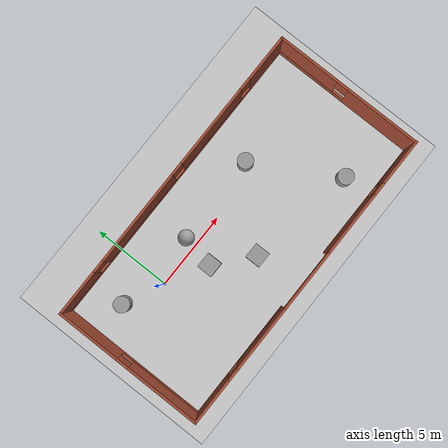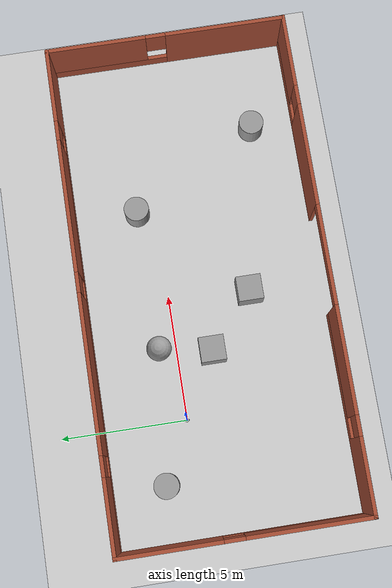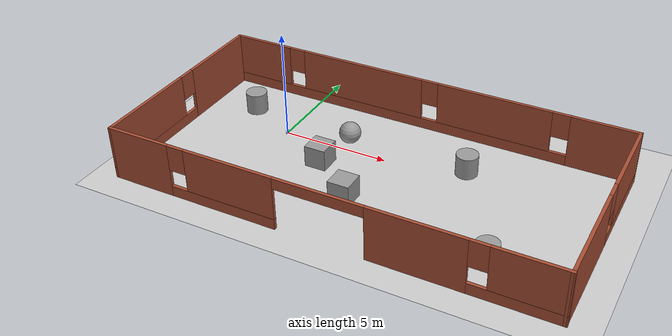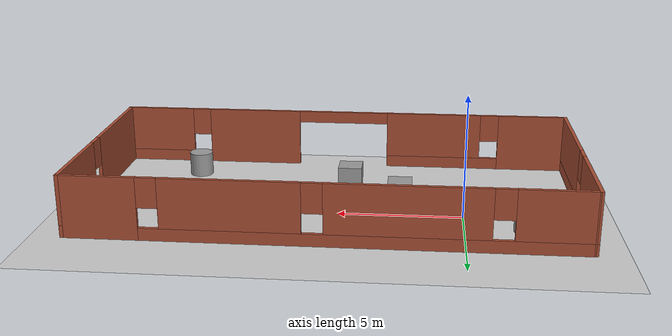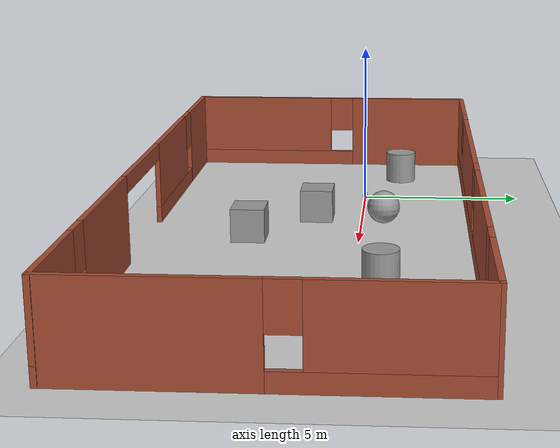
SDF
<sdf version="1.7">
 <world name="default">
  <light name="sun" type="directional">
   <pose>0 0 10 0 -0 0</pose>
   <diffuse>0.8 0.8 0.8 1</diffuse>
   <specular>0.2 0.2 0.2 1</specular>
   <attenuation>
    <range>1000</range>
    <constant>0.9</constant>
    <linear>0.01</linear>
    <quadratic>0.001</quadratic>
   </attenuation>
   <direction>-0.5 0.1 -0.9</direction>
   <spot><inner_angle>0</inner_angle><outer_angle>0</outer_angle><falloff>0</falloff></spot>
  </light>
  <model name="ground_plane">
   <static>1</static>
   <link name="link">
    <collision name="collision">
     <geometry><plane><normal>0 0 1</normal><size>100 100</size></plane></geometry>
     <surface><friction><ode><mu>100</mu><mu2>50</mu2></ode></friction></surface>
    </collision>
    <visual name="visual">
     <cast_shadows>0</cast_shadows>
     <geometry><plane><normal>0 0 1</normal><size>100 100</size></plane></geometry>
     <material>
      <script><uri>file://media/materials/scripts/gazebo.material</uri><name>Gazebo/Grey</name></script>
     </material>
    </visual>
   </link>
  </model>
  <gravity>0 0 -9.8</gravity>
  <magnetic_field>6e-06 2.3e-05 -4.2e-05</magnetic_field>
  <atmosphere type="adiabatic"/>
  <physics type="ode">
   <max_step_size>0.001</max_step_size>
   <real_time_factor>1</real_time_factor>
   <real_time_update_rate>1000</real_time_update_rate>
  </physics>
  <scene><ambient>0.4 0.4 0.4 1</ambient><background>0.7 0.7 0.7 1</background><shadows>1</shadows></scene>
  <audio><device>default</device></audio>
  <spherical_coordinates>
   <surface_model>EARTH_WGS84</surface_model>
   <latitude_deg>0</latitude_deg>
   <longitude_deg>0</longitude_deg>
   <elevation>0</elevation>
   <heading_deg>0</heading_deg>
  </spherical_coordinates>
  <model name="my_robot">
   <link name="base_footprint">
    <inertial>
     <pose>0 0 0.074736 0 -0 0</pose>
     <mass>1500.15</mass>
     <inertia>
      <ixx>7.41805</ixx>
      <ixy>0</ixy>
      <ixz>-1.38778e-17</ixz>
      <iyy>8.59417</iyy>
      <iyz>0</iyz>
      <izz>4.48189</izz>
     </inertia>
    </inertial>
    <collision name="base_footprint_fixed_joint_lump__base_link_collision">
     <pose>0 0 0.10525 0 -0 0</pose>
     <geometry><cylinder><length>0.1855</length><radius>0.07</radius></cylinder></geometry>
    </collision>
    <collision name="base_footprint_fixed_joint_lump__camera_collision_1">
     <pose>0.075 0 0.164 3.14159 1.57079 3.14159</pose>
     <geometry><box><size>0.025 0.025 0.01</size></box></geometry>
    </collision>
    <collision name="base_footprint_fixed_joint_lump__front_caster_wheel_link_collision_2">
     <pose>0.0485 0 0.01267 0 -0 0</pose>
     <geometry><sphere><radius>0.0125</radius></sphere></geometry>
    </collision>
    <collision name="base_footprint_fixed_joint_lump__bno055_collision_3">
     <pose>0 0 0.1885 0 -0 1.5708</pose>
     <geometry><box><size>0.02 0.025 0.0045</size></box></geometry>
    </collision>
    <collision name="base_footprint_fixed_joint_lump__laser_collision_4">
     <pose>0 0 0.21615 0 -0 0</pose>
     <geometry><cylinder><length>0.0413</length><radius>0.0348</radius></cylinder></geometry>
    </collision>
    <collision name="base_footprint_fixed_joint_lump__rear_caster_wheel_link_collision_5">
     <pose>-0.0485 0 0.01267 0 -0 0</pose>
     <geometry><sphere><radius>0.0125</radius></sphere></geometry>
    </collision>
    <visual name="base_footprint_fixed_joint_lump__base_link_visual">
     <pose>0 0 0.15 1.5708 -0 1.5708</pose>
     <geometry><mesh><scale>0.001 0.001 0.001</scale><uri>model://meshes/my_robot_base.stl</uri></mesh></geometry>
     <material>
      <ambient>0.6 0.7 0.6 1</ambient>
      <diffuse>0.6 0.7 0.6 1</diffuse>
      <specular>0.2 0.3 0.3 1</specular>
      <emissive>0 0 0 1</emissive>
     </material>
    </visual>
    <visual name="base_footprint_fixed_joint_lump__camera_visual_1">
     <pose>0.075 0 0.164 3.14159 1.57079 3.14159</pose>
     <geometry><box><size>0.025 0.025 0.01</size></box></geometry>
     <material>
      <script><name>Gazebo/Red</name><uri>file://media/materials/scripts/gazebo.material</uri></script>
     </material>
    </visual>
    <visual name="base_footprint_fixed_joint_lump__front_caster_wheel_link_visual_2">
     <pose>0.0485 0.0065 0.01267 0 0 -1.5708</pose>
     <geometry><mesh><scale>0.001 0.001 0.001</scale><uri>model://meshes/caster_wheel.stl</uri></mesh></geometry>
     <material>
      <script><name>Gazebo/FlatBlack</name><uri>file://media/materials/scripts/gazebo.material</uri></script>
     </material>
    </visual>
    <visual name="base_footprint_fixed_joint_lump__bno055_visual_3">
     <pose>0 0 0.18625 0 -0 0</pose>
     <geometry>
      <mesh><scale>0.001 0.001 0.001</scale><uri>model://meshes/adafruit_bno055_stemma_qt_1.stl</uri></mesh>
     </geometry>
     <material>
      <ambient>0.8 0.1 0.1 1</ambient>
      <diffuse>0.8 0.1 0.1 1</diffuse>
      <specular>0.3 0.1 0.1 1</specular>
      <emissive>0.1 0 0 1</emissive>
     </material>
    </visual>
    <visual name="base_footprint_fixed_joint_lump__laser_visual_4">
     <pose>0 0 0.1955 0 -0 0</pose>
     <geometry>
      <mesh><scale>0.001 0.001 0.001</scale><uri>model://meshes/c1m1_appearance_v2_20230926_3d_.stl</uri></mesh>
     </geometry>
     <material>
      <ambient>1 1 0.6 1</ambient>
      <diffuse>1 1 0.6 1</diffuse>
      <specular>0.2 0.2 0.1 1</specular>
      <emissive>0.1 0.1 0 1</emissive>
     </material>
    </visual>
    <visual name="base_footprint_fixed_joint_lump__rear_caster_wheel_link_visual_5">
     <pose>-0.0485 0.0065 0.01267 0 0 -1.5708</pose>
     <geometry><mesh><scale>0.001 0.001 0.001</scale><uri>model://meshes/caster_wheel.stl</uri></mesh></geometry>
     <material>
      <script><name>Gazebo/FlatBlack</name><uri>file://media/materials/scripts/gazebo.material</uri></script>
     </material>
    </visual>
    <sensor name="camera" type="camera">
     <visualize>1</visualize>
     <update_rate>30</update_rate>
     <camera>
      <horizontal_fov>1.0856</horizontal_fov>
      <image><width>640</width><height>480</height><format>R8G8B8</format></image>
      <clip><near>0.05</near><far>3</far></clip>
     </camera>
     <plugin name="camera_controller" filename="libgazebo_ros_camera.so">
      <alwaysOn>1</alwaysOn>
      <imageTopicName>image_raw/compressed</imageTopicName>
      <frame_name>camera_optical</frame_name>
      <hackBaseline>0.07</hackBaseline>
      <distortionK1>0.0</distortionK1>
      <distortionK2>0.0</distortionK2>
      <distortionK3>0.0</distortionK3>
      <distortionT1>0.0</distortionT1>
      <distortionT2>0.0</distortionT2>
     </plugin>
     <pose>0.075 0 0.159 0 -0 0</pose>
    </sensor>
    <m1 value="10.0"/>
    <m2 value="10.0"/>
    <m1 value="10.0"/>
    <m2 value="10.0"/>
   </link>
   <joint name="base_left_wheel_joint" type="revolute">
    <pose relative_to="base_footprint">0 0.0775 0.033 1.5708 -0 0</pose>
    <parent>base_footprint</parent>
    <child>left_wheel_link</child>
    <axis>
     <xyz>0 0 -1</xyz>
     <limit><lower>-1e+16</lower><upper>1e+16</upper></limit>
     <dynamics><spring_reference>0</spring_reference><spring_stiffness>0</spring_stiffness></dynamics>
    </axis>
   </joint>
   <link name="left_wheel_link">
    <pose relative_to="base_left_wheel_joint">0 0 0 0 -0 0</pose>
    <inertial>
     <mass>500</mass>
     <inertia>
      <ixx>0.162167</ixx>
      <ixy>0</ixy>
      <ixz>0</ixz>
      <iyy>0.000162167</iyy>
      <iyz>0</iyz>
      <izz>0.27225</izz>
     </inertia>
    </inertial>
    <collision name="left_wheel_link_collision">
     <geometry><sphere><radius>0.033</radius></sphere></geometry>
    </collision>
    <visual name="left_wheel_link_visual">
     <pose>0 0 -0.0125 1.5708 -0 0</pose>
     <geometry><mesh><scale>0.001 0.001 0.001</scale><uri>model://meshes/wheel.stl</uri></mesh></geometry>
     <material>
      <ambient>0.4 0.5 0.6 1</ambient>
      <diffuse>0.4 0.5 0.6 1</diffuse>
      <specular>0.2 0.3 0.4 1</specular>
      <emissive>0 0 0 1</emissive>
     </material>
    </visual>
    <m1 value="10.0"/>
    <m2 value="10.0"/>
   </link>
   <joint name="base_right_wheel_joint" type="revolute">
    <pose relative_to="base_footprint">0 -0.0775 0.033 -1.5708 0 0</pose>
    <parent>base_footprint</parent>
    <child>right_wheel_link</child>
    <axis>
     <xyz>0 0 1</xyz>
     <limit><lower>-1e+16</lower><upper>1e+16</upper></limit>
     <dynamics><spring_reference>0</spring_reference><spring_stiffness>0</spring_stiffness></dynamics>
    </axis>
   </joint>
   <link name="right_wheel_link">
    <pose relative_to="base_right_wheel_joint">0 0 0 0 -0 0</pose>
    <inertial>
     <mass>500</mass>
     <inertia>
      <ixx>0.162167</ixx>
      <ixy>0</ixy>
      <ixz>0</ixz>
      <iyy>0.162167</iyy>
      <iyz>0</iyz>
      <izz>0.27225</izz>
     </inertia>
    </inertial>
    <collision name="right_wheel_link_collision">
     <geometry><sphere><radius>0.033</radius></sphere></geometry>
    </collision>
    <visual name="right_wheel_link_visual">
     <pose>0 0 -0.0125 1.5708 -0 0</pose>
     <geometry><mesh><scale>0.001 0.001 0.001</scale><uri>model://meshes/wheel.stl</uri></mesh></geometry>
     <material>
      <ambient>0.4 0.5 0.6 1</ambient>
      <diffuse>0.4 0.5 0.6 1</diffuse>
      <specular>0.2 0.3 0.4 1</specular>
      <emissive>0 0 0 1</emissive>
     </material>
    </visual>
    <m1 value="10.0"/>
    <m2 value="10.0"/>
   </link>
   <plugin name="diff_drive_controller" filename="libgazebo_ros_diff_drive.so">
    <ros>
     <namespace>/my_robot</namespace>
     <remapping>cmd_vel:=/cmd_vel_out</remapping>
     <remapping>odom:=/odom</remapping>
    </ros>
    <robotNamespace>/my_robot</robotNamespace>
    <left_joint>base_left_wheel_joint</left_joint>
    <right_joint>base_right_wheel_joint</right_joint>
    <wheel_separation>0.155</wheel_separation>
    <wheel_diameter>0.066</wheel_diameter>
    <update_rate>100.0</update_rate>
    <max_velocity>1.0</max_velocity>
   </plugin>
   <pose>0.001137 3.3e-05 0 -0 0.003506 -0.002123</pose>
  </model>
  <model name="gazebo_world">
   <pose>5.27296 -1.46749 0 0 -0 0</pose>
   <link name="Wall_10">
    <pose>0.011301 -4.8006 0 0 -0 0</pose>
    <visual name="Wall_10_Visual_0">
     <pose>-8.49864 0 1.25 0 -0 0</pose>
     <geometry><box><size>3.00273 0.15 2.5</size></box></geometry>
     <material>
      <script><uri>file://media/materials/scripts/gazebo.material</uri><name>Gazebo/Bricks</name></script>
      <ambient>1 0.764706 0.305882 1</ambient>
     </material>
     <meta><layer>0</layer></meta>
    </visual>
    <collision name="Wall_10_Collision_0">
     <geometry><box><size>3.00273 0.15 2.5</size></box></geometry>
     <pose>-8.49864 0 1.25 0 -0 0</pose>
    </collision>
    <visual name="Wall_10_Visual_1">
     <pose>4.07939 0 1.25 0 -0 0</pose>
     <geometry><box><size>4.15782 0.15 2.5</size></box></geometry>
     <material>
      <script><uri>file://media/materials/scripts/gazebo.material</uri><name>Gazebo/Bricks</name></script>
      <ambient>1 0.764706 0.305882 1</ambient>
     </material>
     <meta><layer>0</layer></meta>
    </visual>
    <collision name="Wall_10_Collision_1">
     <geometry><box><size>4.15782 0.15 2.5</size></box></geometry>
     <pose>4.07939 0 1.25 0 -0 0</pose>
    </collision>
    <visual name="Wall_10_Visual_2">
     <pose>-4.4984 0 0.25 0 -0 0</pose>
     <geometry><box><size>4.99775 0.15 0.5</size></box></geometry>
     <material>
      <script><uri>file://media/materials/scripts/gazebo.material</uri><name>Gazebo/Bricks</name></script>
      <ambient>1 0.764706 0.305882 1</ambient>
     </material>
     <meta><layer>0</layer></meta>
    </visual>
    <collision name="Wall_10_Collision_2">
     <geometry><box><size>4.99775 0.15 0.5</size></box></geometry>
     <pose>-4.4984 0 0.25 0 -0 0</pose>
    </collision>
    <visual name="Wall_10_Visual_3">
     <pose>8.07915 0 0.25 0 -0 0</pose>
     <geometry><box><size>3.8417 0.15 0.5</size></box></geometry>
     <material>
      <script><uri>file://media/materials/scripts/gazebo.material</uri><name>Gazebo/Bricks</name></script>
      <ambient>1 0.764706 0.305882 1</ambient>
     </material>
     <meta><layer>0</layer></meta>
    </visual>
    <collision name="Wall_10_Collision_3">
     <geometry><box><size>3.8417 0.15 0.5</size></box></geometry>
     <pose>8.07915 0 0.25 0 -0 0</pose>
    </collision>
    <visual name="Wall_10_Visual_4">
     <pose>-4.0984 0 1.5 0 -0 0</pose>
     <geometry><box><size>4.19775 0.15 2</size></box></geometry>
     <material>
      <script><uri>file://media/materials/scripts/gazebo.material</uri><name>Gazebo/Bricks</name></script>
      <ambient>1 0.764706 0.305882 1</ambient>
     </material>
     <meta><layer>0</layer></meta>
    </visual>
    <collision name="Wall_10_Collision_4">
     <geometry><box><size>4.19775 0.15 2</size></box></geometry>
     <pose>-4.0984 0 1.5 0 -0 0</pose>
    </collision>
    <visual name="Wall_10_Visual_5">
     <pose>-4.0984 0 1.5 0 -0 0</pose>
     <geometry><box><size>4.19775 0.15 2</size></box></geometry>
     <material>
      <script><uri>file://media/materials/scripts/gazebo.material</uri><name>Gazebo/Bricks</name></script>
      <ambient>1 0.764706 0.305882 1</ambient>
     </material>
     <meta><layer>0</layer></meta>
    </visual>
    <collision name="Wall_10_Collision_5">
     <geometry><box><size>4.19775 0.15 2</size></box></geometry>
     <pose>-4.0984 0 1.5 0 -0 0</pose>
    </collision>
    <visual name="Wall_10_Visual_6">
     <pose>8.47915 0 1.5 0 -0 0</pose>
     <geometry><box><size>3.0417 0.15 2</size></box></geometry>
     <material>
      <script><uri>file://media/materials/scripts/gazebo.material</uri><name>Gazebo/Bricks</name></script>
      <ambient>1 0.764706 0.305882 1</ambient>
     </material>
     <meta><layer>0</layer></meta>
    </visual>
    <collision name="Wall_10_Collision_6">
     <geometry><box><size>3.0417 0.15 2</size></box></geometry>
     <pose>8.47915 0 1.5 0 -0 0</pose>
    </collision>
    <visual name="Wall_10_Visual_7">
     <pose>-6.59727 0 1.9 0 -0 0</pose>
     <geometry><box><size>0.8 0.15 1.2</size></box></geometry>
     <material>
      <script><uri>file://media/materials/scripts/gazebo.material</uri><name>Gazebo/Bricks</name></script>
      <ambient>1 0.764706 0.305882 1</ambient>
     </material>
     <meta><layer>0</layer></meta>
    </visual>
    <collision name="Wall_10_Collision_7">
     <geometry><box><size>0.8 0.15 1.2</size></box></geometry>
     <pose>-6.59727 0 1.9 0 -0 0</pose>
    </collision>
    <visual name="Wall_10_Visual_8">
     <pose>6.5583 0 1.9 0 -0 0</pose>
     <geometry><box><size>0.8 0.15 1.2</size></box></geometry>
     <material>
      <script><uri>file://media/materials/scripts/gazebo.material</uri><name>Gazebo/Bricks</name></script>
      <ambient>1 0.764706 0.305882 1</ambient>
     </material>
     <meta><layer>0</layer></meta>
    </visual>
    <collision name="Wall_10_Collision_8">
     <geometry><box><size>0.8 0.15 1.2</size></box></geometry>
     <pose>6.5583 0 1.9 0 -0 0</pose>
    </collision>
    <visual name="Wall_10_Visual_9">
     <pose>0.000477 0 2.25 0 -0 0</pose>
     <geometry><box><size>4 0.15 0.5</size></box></geometry>
     <material>
      <script><uri>file://media/materials/scripts/gazebo.material</uri><name>Gazebo/Bricks</name></script>
      <ambient>1 0.764706 0.305882 1</ambient>
     </material>
     <meta><layer>0</layer></meta>
    </visual>
    <collision name="Wall_10_Collision_9">
     <geometry><box><size>4 0.15 0.5</size></box></geometry>
     <pose>0.000477 0 2.25 0 -0 0</pose>
    </collision>
    <visual name="Wall_10_Visual_10">
     <pose>0.000477 0 2.25 0 -0 0</pose>
     <geometry><box><size>4 0.15 0.5</size></box></geometry>
     <material>
      <script><uri>file://media/materials/scripts/gazebo.material</uri><name>Gazebo/Bricks</name></script>
      <ambient>1 0.764706 0.305882 1</ambient>
     </material>
     <meta><layer>0</layer></meta>
    </visual>
    <collision name="Wall_10_Collision_10">
     <geometry><box><size>4 0.15 0.5</size></box></geometry>
     <pose>0.000477 0 2.25 0 -0 0</pose>
    </collision>
   </link>
   <link name="Wall_11">
    <pose>9.91628 0 0 0 -0 1.57133</pose>
    <visual name="Wall_11_Visual_0">
     <pose>-2.43389 0 1.25 0 -0 0</pose>
     <geometry><box><size>4.88346 0.15 2.5</size></box></geometry>
     <material>
      <script><uri>file://media/materials/scripts/gazebo.material</uri><name>Gazebo/Bricks</name></script>
      <ambient>1 0.764706 0.305882 1</ambient>
     </material>
     <meta><layer>0</layer></meta>
    </visual>
    <collision name="Wall_11_Collision_0">
     <geometry><box><size>4.88346 0.15 2.5</size></box></geometry>
     <pose>-2.43389 0 1.25 0 -0 0</pose>
    </collision>
    <visual name="Wall_11_Visual_1">
     <pose>2.44173 0 0.25 0 -0 0</pose>
     <geometry><box><size>4.86777 0.15 0.5</size></box></geometry>
     <material>
      <script><uri>file://media/materials/scripts/gazebo.material</uri><name>Gazebo/Bricks</name></script>
      <ambient>1 0.764706 0.305882 1</ambient>
     </material>
     <meta><layer>0</layer></meta>
    </visual>
    <collision name="Wall_11_Collision_1">
     <geometry><box><size>4.86777 0.15 0.5</size></box></geometry>
     <pose>2.44173 0 0.25 0 -0 0</pose>
    </collision>
    <visual name="Wall_11_Visual_2">
     <pose>2.84173 0 1.5 0 -0 0</pose>
     <geometry><box><size>4.06777 0.15 2</size></box></geometry>
     <material>
      <script><uri>file://media/materials/scripts/gazebo.material</uri><name>Gazebo/Bricks</name></script>
      <ambient>1 0.764706 0.305882 1</ambient>
     </material>
     <meta><layer>0</layer></meta>
    </visual>
    <collision name="Wall_11_Collision_2">
     <geometry><box><size>4.06777 0.15 2</size></box></geometry>
     <pose>2.84173 0 1.5 0 -0 0</pose>
    </collision>
    <visual name="Wall_11_Visual_3">
     <pose>0.407842 0 1.9 0 -0 0</pose>
     <geometry><box><size>0.8 0.15 1.2</size></box></geometry>
     <material>
      <script><uri>file://media/materials/scripts/gazebo.material</uri><name>Gazebo/Bricks</name></script>
      <ambient>1 0.764706 0.305882 1</ambient>
     </material>
     <meta><layer>0</layer></meta>
    </visual>
    <collision name="Wall_11_Collision_3">
     <geometry><box><size>0.8 0.15 1.2</size></box></geometry>
     <pose>0.407842 0 1.9 0 -0 0</pose>
    </collision>
   </link>
   <link name="Wall_13">
    <pose>-0.011261 4.8006 0 0 -0 3.14159</pose>
    <visual name="Wall_13_Visual_0">
     <pose>-8.48128 0 1.25 0 -0 0</pose>
     <geometry><box><size>3.03743 0.15 2.5</size></box></geometry>
     <material>
      <script><uri>file://media/materials/scripts/gazebo.material</uri><name>Gazebo/Bricks</name></script>
      <ambient>1 0.764706 0.305882 1</ambient>
     </material>
     <meta><layer>0</layer></meta>
    </visual>
    <collision name="Wall_13_Collision_0">
     <geometry><box><size>3.03743 0.15 2.5</size></box></geometry>
     <pose>-8.48128 0 1.25 0 -0 0</pose>
    </collision>
    <visual name="Wall_13_Visual_1">
     <pose>1.51872 0 0.25 0 -0 0</pose>
     <geometry><box><size>16.9626 0.15 0.5</size></box></geometry>
     <material>
      <script><uri>file://media/materials/scripts/gazebo.material</uri><name>Gazebo/Bricks</name></script>
      <ambient>1 0.764706 0.305882 1</ambient>
     </material>
     <meta><layer>0</layer></meta>
    </visual>
    <collision name="Wall_13_Collision_1">
     <geometry><box><size>16.9626 0.15 0.5</size></box></geometry>
     <pose>1.51872 0 0.25 0 -0 0</pose>
    </collision>
    <visual name="Wall_13_Visual_2">
     <pose>-3.48268 0 1.5 0 -0 0</pose>
     <geometry><box><size>5.35977 0.15 2</size></box></geometry>
     <material>
      <script><uri>file://media/materials/scripts/gazebo.material</uri><name>Gazebo/Bricks</name></script>
      <ambient>1 0.764706 0.305882 1</ambient>
     </material>
     <meta><layer>0</layer></meta>
    </visual>
    <collision name="Wall_13_Collision_2">
     <geometry><box><size>5.35977 0.15 2</size></box></geometry>
     <pose>-3.48268 0 1.5 0 -0 0</pose>
    </collision>
    <visual name="Wall_13_Visual_3">
     <pose>3.09358 0 1.5 0 -0 0</pose>
     <geometry><box><size>6.19276 0.15 2</size></box></geometry>
     <material>
      <script><uri>file://media/materials/scripts/gazebo.material</uri><name>Gazebo/Bricks</name></script>
      <ambient>1 0.764706 0.305882 1</ambient>
     </material>
     <meta><layer>0</layer></meta>
    </visual>
    <collision name="Wall_13_Collision_3">
     <geometry><box><size>6.19276 0.15 2</size></box></geometry>
     <pose>3.09358 0 1.5 0 -0 0</pose>
    </collision>
    <visual name="Wall_13_Visual_4">
     <pose>8.49498 0 1.5 0 -0 0</pose>
     <geometry><box><size>3.01004 0.15 2</size></box></geometry>
     <material>
      <script><uri>file://media/materials/scripts/gazebo.material</uri><name>Gazebo/Bricks</name></script>
      <ambient>1 0.764706 0.305882 1</ambient>
     </material>
     <meta><layer>0</layer></meta>
    </visual>
    <collision name="Wall_13_Collision_4">
     <geometry><box><size>3.01004 0.15 2</size></box></geometry>
     <pose>8.49498 0 1.5 0 -0 0</pose>
    </collision>
    <visual name="Wall_13_Visual_5">
     <pose>-6.56257 0 1.9 0 -0 0</pose>
     <geometry><box><size>0.8 0.15 1.2</size></box></geometry>
     <material>
      <script><uri>file://media/materials/scripts/gazebo.material</uri><name>Gazebo/Bricks</name></script>
      <ambient>1 0.764706 0.305882 1</ambient>
     </material>
     <meta><layer>0</layer></meta>
    </visual>
    <collision name="Wall_13_Collision_5">
     <geometry><box><size>0.8 0.15 1.2</size></box></geometry>
     <pose>-6.56257 0 1.9 0 -0 0</pose>
    </collision>
    <visual name="Wall_13_Visual_6">
     <pose>-0.402795 0 1.9 0 -0 0</pose>
     <geometry><box><size>0.8 0.15 1.2</size></box></geometry>
     <material>
      <script><uri>file://media/materials/scripts/gazebo.material</uri><name>Gazebo/Bricks</name></script>
      <ambient>1 0.764706 0.305882 1</ambient>
     </material>
     <meta><layer>0</layer></meta>
    </visual>
    <collision name="Wall_13_Collision_6">
     <geometry><box><size>0.8 0.15 1.2</size></box></geometry>
     <pose>-0.402795 0 1.9 0 -0 0</pose>
    </collision>
    <visual name="Wall_13_Visual_7">
     <pose>6.58996 0 1.9 0 -0 0</pose>
     <geometry><box><size>0.8 0.15 1.2</size></box></geometry>
     <material>
      <script><uri>file://media/materials/scripts/gazebo.material</uri><name>Gazebo/Bricks</name></script>
      <ambient>1 0.764706 0.305882 1</ambient>
     </material>
     <meta><layer>0</layer></meta>
    </visual>
    <collision name="Wall_13_Collision_7">
     <geometry><box><size>0.8 0.15 1.2</size></box></geometry>
     <pose>6.58996 0 1.9 0 -0 0</pose>
    </collision>
   </link>
   <link name="Wall_14">
    <pose>-9.93373 0 0 0 -0 -1.57027</pose>
    <visual name="Wall_14_Visual_0">
     <pose>-2.83483 0 1.25 0 -0 0</pose>
     <geometry><box><size>4.08157 0.15 2.5</size></box></geometry>
     <material>
      <script><uri>file://media/materials/scripts/gazebo.material</uri><name>Gazebo/Bricks</name></script>
      <ambient>1 0.764706 0.305882 1</ambient>
     </material>
     <meta><layer>0</layer></meta>
    </visual>
    <collision name="Wall_14_Collision_0">
     <geometry><box><size>4.08157 0.15 2.5</size></box></geometry>
     <pose>-2.83483 0 1.25 0 -0 0</pose>
    </collision>
    <visual name="Wall_14_Visual_1">
     <pose>2.04079 0 0.25 0 -0 0</pose>
     <geometry><box><size>5.66966 0.15 0.5</size></box></geometry>
     <material>
      <script><uri>file://media/materials/scripts/gazebo.material</uri><name>Gazebo/Bricks</name></script>
      <ambient>1 0.764706 0.305882 1</ambient>
     </material>
     <meta><layer>0</layer></meta>
    </visual>
    <collision name="Wall_14_Collision_1">
     <geometry><box><size>5.66966 0.15 0.5</size></box></geometry>
     <pose>2.04079 0 0.25 0 -0 0</pose>
    </collision>
    <visual name="Wall_14_Visual_2">
     <pose>2.44079 0 1.5 0 -0 0</pose>
     <geometry><box><size>4.86966 0.15 2</size></box></geometry>
     <material>
      <script><uri>file://media/materials/scripts/gazebo.material</uri><name>Gazebo/Bricks</name></script>
      <ambient>1 0.764706 0.305882 1</ambient>
     </material>
     <meta><layer>0</layer></meta>
    </visual>
    <collision name="Wall_14_Collision_2">
     <geometry><box><size>4.86966 0.15 2</size></box></geometry>
     <pose>2.44079 0 1.5 0 -0 0</pose>
    </collision>
    <visual name="Wall_14_Visual_3">
     <pose>-0.394042 0 1.9 0 -0 0</pose>
     <geometry><box><size>0.8 0.15 1.2</size></box></geometry>
     <material>
      <script><uri>file://media/materials/scripts/gazebo.material</uri><name>Gazebo/Bricks</name></script>
      <ambient>1 0.764706 0.305882 1</ambient>
     </material>
     <meta><layer>0</layer></meta>
    </visual>
    <collision name="Wall_14_Collision_3">
     <geometry><box><size>0.8 0.15 1.2</size></box></geometry>
     <pose>-0.394042 0 1.9 0 -0 0</pose>
    </collision>
   </link>
   <static>1</static>
  </model>
  <model name="unit_cylinder">
   <pose>8.61125 0.744783 0.499994 -4e-06 -4e-06 -0</pose>
   <link name="link">
    <inertial>
     <mass>1</mass>
     <inertia><ixx>0.145833</ixx><ixy>0</ixy><ixz>0</ixz><iyy>0.145833</iyy><iyz>0</iyz><izz>0.125</izz></inertia>
    </inertial>
    <collision name="collision">
     <geometry><cylinder><radius>0.5</radius><length>1</length></cylinder></geometry>
    </collision>
    <visual name="visual">
     <geometry><cylinder><radius>0.5</radius><length>1</length></cylinder></geometry>
     <material>
      <script><name>Gazebo/Grey</name><uri>file://media/materials/scripts/gazebo.material</uri></script>
     </material>
    </visual>
   </link>
  </model>
  <model name="unit_box">
   <pose>4.72531 -3.24291 0.499995 0 -1e-05 0</pose>
   <link name="link">
    <inertial>
     <mass>1</mass>
     <inertia>
      <ixx>0.166667</ixx>
      <ixy>0</ixy>
      <ixz>0</ixz>
      <iyy>0.166667</iyy>
      <iyz>0</iyz>
      <izz>0.166667</izz>
     </inertia>
    </inertial>
    <collision name="collision"><geometry><box><size>1 1 1</size></box></geometry></collision>
    <visual name="visual">
     <geometry><box><size>1 1 1</size></box></geometry>
     <material>
      <script><name>Gazebo/Grey</name><uri>file://media/materials/scripts/gazebo.material</uri></script>
     </material>
    </visual>
   </link>
  </model>
  <model name="unit_box_0">
   <pose>2.55814 -1.40274 0.499995 0 1e-05 0</pose>
   <link name="link">
    <inertial>
     <mass>1</mass>
     <inertia>
      <ixx>0.166667</ixx>
      <ixy>0</ixy>
      <ixz>0</ixz>
      <iyy>0.166667</iyy>
      <iyz>0</iyz>
      <izz>0.166667</izz>
     </inertia>
    </inertial>
    <collision name="collision"><geometry><box><size>1 1 1</size></box></geometry></collision>
    <visual name="visual">
     <geometry><box><size>1 1 1</size></box></geometry>
     <material>
      <script><name>Gazebo/Grey</name><uri>file://media/materials/scripts/gazebo.material</uri></script>
     </material>
    </visual>
   </link>
  </model>
  <model name="unit_cylinder_0">
   <pose>11.5336 -4.43365 0.499992 -3e-06 -4e-06 -0</pose>
   <link name="link">
    <inertial>
     <mass>1</mass>
     <inertia><ixx>0.145833</ixx><ixy>0</ixy><ixz>0</ixz><iyy>0.145833</iyy><iyz>0</iyz><izz>0.125</izz></inertia>
    </inertial>
    <collision name="collision">
     <geometry><cylinder><radius>0.5</radius><length>1</length></cylinder></geometry>
    </collision>
    <visual name="visual">
     <geometry><cylinder><radius>0.5</radius><length>1</length></cylinder></geometry>
     <material>
      <script><name>Gazebo/Grey</name><uri>file://media/materials/scripts/gazebo.material</uri></script>
     </material>
    </visual>
   </link>
  </model>
  <model name="unit_cylinder_1">
   <pose>-2.39226 1.15054 0.499998 3e-06 4e-06 -0</pose>
   <link name="link">
    <inertial>
     <mass>1</mass>
     <inertia><ixx>0.145833</ixx><ixy>0</ixy><ixz>0</ixz><iyy>0.145833</iyy><iyz>0</iyz><izz>0.125</izz></inertia>
    </inertial>
    <collision name="collision">
     <geometry><cylinder><radius>0.5</radius><length>1</length></cylinder></geometry>
    </collision>
    <visual name="visual">
     <geometry><cylinder><radius>0.5</radius><length>1</length></cylinder></geometry>
     <material>
      <script><name>Gazebo/Grey</name><uri>file://media/materials/scripts/gazebo.material</uri></script>
     </material>
    </visual>
   </link>
  </model>
  <model name="unit_sphere">
   <pose>2.93437 0.676854 0.5 0 -0 0</pose>
   <link name="link">
    <inertial>
     <mass>1</mass>
     <inertia><ixx>0.1</ixx><ixy>0</ixy><ixz>0</ixz><iyy>0.1</iyy><iyz>0</iyz><izz>0.1</izz></inertia>
    </inertial>
    <collision name="collision"><geometry><sphere><radius>0.5</radius></sphere></geometry></collision>
    <visual name="visual">
     <geometry><sphere><radius>0.5</radius></sphere></geometry>
     <material>
      <script><name>Gazebo/Grey</name><uri>file://media/materials/scripts/gazebo.material</uri></script>
     </material>
    </visual>
   </link>
  </model>
 </world>
</sdf>
